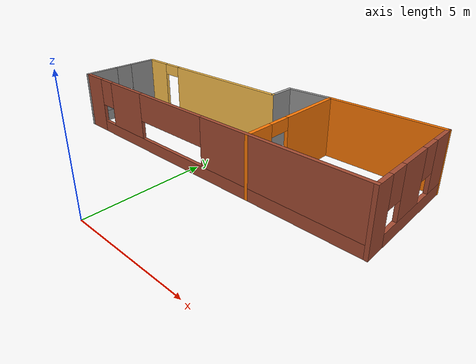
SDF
<?xml version='1.0'?>
<sdf version='1.6'>
  <model name='Building'>
    <pose frame=''>0.342104 7.03476 0 0 -0 0</pose>
    <link name='Wall_1'>
      <pose frame=''>-7.3 -0.627835 0 0 0 -1.5708</pose>
      <visual name='Wall_1_Visual_0'>
        <pose frame=''>-1.17126 0 1.25 0 -0 0</pose>
        <geometry>
          <box>
            <size>1.40748 0.15 2.5</size>
          </box>
        </geometry>
        <material>
          <script>
            <uri>file://media/materials/scripts/gazebo.material</uri>
            <name>Gazebo/Grey</name>
          </script>
          <ambient>1 1 1 1</ambient>
        </material>
        <meta>
          <layer>0</layer>
        </meta>
      </visual>
      <collision name='Wall_1_Collision_0'>
        <geometry>
          <box>
            <size>1.40748 0.15 2.5</size>
          </box>
        </geometry>
        <pose frame=''>-1.17126 0 1.25 0 -0 0</pose>
      </collision>
      <visual name='Wall_1_Visual_1'>
        <pose frame=''>0.703738 0 0.25 0 -0 0</pose>
        <geometry>
          <box>
            <size>2.34253 0.15 0.5</size>
          </box>
        </geometry>
        <material>
          <script>
            <uri>file://media/materials/scripts/gazebo.material</uri>
            <name>Gazebo/Grey</name>
          </script>
          <ambient>1 1 1 1</ambient>
        </material>
        <meta>
          <layer>0</layer>
        </meta>
      </visual>
      <collision name='Wall_1_Collision_1'>
        <geometry>
          <box>
            <size>2.34253 0.15 0.5</size>
          </box>
        </geometry>
        <pose frame=''>0.703738 0 0.25 0 -0 0</pose>
      </collision>
      <visual name='Wall_1_Visual_2'>
        <pose frame=''>1.10374 0 1.5 0 -0 0</pose>
        <geometry>
          <box>
            <size>1.54252 0.15 2</size>
          </box>
        </geometry>
        <material>
          <script>
            <uri>file://media/materials/scripts/gazebo.material</uri>
            <name>Gazebo/Grey</name>
          </script>
          <ambient>1 1 1 1</ambient>
        </material>
        <meta>
          <layer>0</layer>
        </meta>
      </visual>
      <collision name='Wall_1_Collision_2'>
        <geometry>
          <box>
            <size>1.54252 0.15 2</size>
          </box>
        </geometry>
        <pose frame=''>1.10374 0 1.5 0 -0 0</pose>
      </collision>
      <visual name='Wall_1_Visual_3'>
        <pose frame=''>-0.067525 0 1.9 0 -0 0</pose>
        <geometry>
          <box>
            <size>0.8 0.15 1.2</size>
          </box>
        </geometry>
        <material>
          <script>
            <uri>file://media/materials/scripts/gazebo.material</uri>
            <name>Gazebo/Grey</name>
          </script>
          <ambient>1 1 1 1</ambient>
        </material>
        <meta>
          <layer>0</layer>
        </meta>
      </visual>
      <collision name='Wall_1_Collision_3'>
        <geometry>
          <box>
            <size>0.8 0.15 1.2</size>
          </box>
        </geometry>
        <pose frame=''>-0.067525 0 1.9 0 -0 0</pose>
      </collision>
    </link>
    <link name='Wall_2'>
      <pose frame=''>0 -2.42783 0 0 -0 0</pose>
      <visual name='Wall_2_Visual_0'>
        <pose frame=''>-6.75061 0 1.25 0 -0 0</pose>
        <geometry>
          <box>
            <size>1.24877 0.15 2.5</size>
          </box>
        </geometry>
        <material>
          <script>
            <uri>file://media/materials/scripts/gazebo.material</uri>
            <name>Gazebo/Bricks</name>
          </script>
          <ambient>1 0.764706 0.305882 1</ambient>
        </material>
        <meta>
          <layer>0</layer>
        </meta>
      </visual>
      <collision name='Wall_2_Collision_0'>
        <geometry>
          <box>
            <size>1.24877 0.15 2.5</size>
          </box>
        </geometry>
        <pose frame=''>-6.75061 0 1.25 0 -0 0</pose>
      </collision>
      <visual name='Wall_2_Visual_1'>
        <pose frame=''>0.624388 0 0.25 0 -0 0</pose>
        <geometry>
          <box>
            <size>13.5012 0.15 0.5</size>
          </box>
        </geometry>
        <material>
          <script>
            <uri>file://media/materials/scripts/gazebo.material</uri>
            <name>Gazebo/Bricks</name>
          </script>
          <ambient>1 0.764706 0.305882 1</ambient>
        </material>
        <meta>
          <layer>0</layer>
        </meta>
      </visual>
      <collision name='Wall_2_Collision_1'>
        <geometry>
          <box>
            <size>13.5012 0.15 0.5</size>
          </box>
        </geometry>
        <pose frame=''>0.624388 0 0.25 0 -0 0</pose>
      </collision>
      <visual name='Wall_2_Visual_2'>
        <pose frame=''>-4.27147 0 1.5 0 -0 0</pose>
        <geometry>
          <box>
            <size>2.1095 0.15 2</size>
          </box>
        </geometry>
        <material>
          <script>
            <uri>file://media/materials/scripts/gazebo.material</uri>
            <name>Gazebo/Bricks</name>
          </script>
          <ambient>1 0.764706 0.305882 1</ambient>
        </material>
        <meta>
          <layer>0</layer>
        </meta>
      </visual>
      <collision name='Wall_2_Collision_2'>
        <geometry>
          <box>
            <size>2.1095 0.15 2</size>
          </box>
        </geometry>
        <pose frame=''>-4.27147 0 1.5 0 -0 0</pose>
      </collision>
      <visual name='Wall_2_Visual_3'>
        <pose frame=''>3.90744 0 1.5 0 -0 0</pose>
        <geometry>
          <box>
            <size>6.93513 0.15 2</size>
          </box>
        </geometry>
        <material>
          <script>
            <uri>file://media/materials/scripts/gazebo.material</uri>
            <name>Gazebo/Bricks</name>
          </script>
          <ambient>1 0.764706 0.305882 1</ambient>
        </material>
        <meta>
          <layer>0</layer>
        </meta>
      </visual>
      <collision name='Wall_2_Collision_3'>
        <geometry>
          <box>
            <size>6.93513 0.15 2</size>
          </box>
        </geometry>
        <pose frame=''>3.90744 0 1.5 0 -0 0</pose>
      </collision>
      <visual name='Wall_2_Visual_4'>
        <pose frame=''>-5.72623 0 1.9 0 -0 0</pose>
        <geometry>
          <box>
            <size>0.8 0.15 1.2</size>
          </box>
        </geometry>
        <material>
          <script>
            <uri>file://media/materials/scripts/gazebo.material</uri>
            <name>Gazebo/Bricks</name>
          </script>
          <ambient>1 0.764706 0.305882 1</ambient>
        </material>
        <meta>
          <layer>0</layer>
        </meta>
      </visual>
      <collision name='Wall_2_Collision_4'>
        <geometry>
          <box>
            <size>0.8 0.15 1.2</size>
          </box>
        </geometry>
        <pose frame=''>-5.72623 0 1.9 0 -0 0</pose>
      </collision>
      <visual name='Wall_2_Visual_5'>
        <pose frame=''>-1.38843 0 1.9 0 -0 0</pose>
        <geometry>
          <box>
            <size>3.6566 0.15 1.2</size>
          </box>
        </geometry>
        <material>
          <script>
            <uri>file://media/materials/scripts/gazebo.material</uri>
            <name>Gazebo/Bricks</name>
          </script>
          <ambient>1 0.764706 0.305882 1</ambient>
        </material>
        <meta>
          <layer>0</layer>
        </meta>
      </visual>
      <collision name='Wall_2_Collision_5'>
        <geometry>
          <box>
            <size>3.6566 0.15 1.2</size>
          </box>
        </geometry>
        <pose frame=''>-1.38843 0 1.9 0 -0 0</pose>
      </collision>
    </link>
    <link name='Wall_3'>
      <pose frame=''>7.3 -0.002835 0 0 -0 1.5708</pose>
      <visual name='Wall_3_Visual_0'>
        <pose frame=''>-2.08581 0 1.25 0 -0 0</pose>
        <geometry>
          <box>
            <size>0.828375 0.15 2.5</size>
          </box>
        </geometry>
        <material>
          <script>
            <uri>file://media/materials/scripts/gazebo.material</uri>
            <name>Gazebo/Bricks</name>
          </script>
          <ambient>1 1 1 1</ambient>
        </material>
        <meta>
          <layer>0</layer>
        </meta>
      </visual>
      <collision name='Wall_3_Collision_0'>
        <geometry>
          <box>
            <size>0.828375 0.15 2.5</size>
          </box>
        </geometry>
        <pose frame=''>-2.08581 0 1.25 0 -0 0</pose>
      </collision>
      <visual name='Wall_3_Visual_1'>
        <pose frame=''>0.414187 0 0.25 0 -0 0</pose>
        <geometry>
          <box>
            <size>4.17162 0.15 0.5</size>
          </box>
        </geometry>
        <material>
          <script>
            <uri>file://media/materials/scripts/gazebo.material</uri>
            <name>Gazebo/Bricks</name>
          </script>
          <ambient>1 1 1 1</ambient>
        </material>
        <meta>
          <layer>0</layer>
        </meta>
      </visual>
      <collision name='Wall_3_Collision_1'>
        <geometry>
          <box>
            <size>4.17162 0.15 0.5</size>
          </box>
        </geometry>
        <pose frame=''>0.414187 0 0.25 0 -0 0</pose>
      </collision>
      <visual name='Wall_3_Visual_2'>
        <pose frame=''>-0.154113 0 1.5 0 -0 0</pose>
        <geometry>
          <box>
            <size>1.43502 0.15 2</size>
          </box>
        </geometry>
        <material>
          <script>
            <uri>file://media/materials/scripts/gazebo.material</uri>
            <name>Gazebo/Bricks</name>
          </script>
          <ambient>1 1 1 1</ambient>
        </material>
        <meta>
          <layer>0</layer>
        </meta>
      </visual>
      <collision name='Wall_3_Collision_2'>
        <geometry>
          <box>
            <size>1.43502 0.15 2</size>
          </box>
        </geometry>
        <pose frame=''>-0.154113 0 1.5 0 -0 0</pose>
      </collision>
      <visual name='Wall_3_Visual_3'>
        <pose frame=''>1.9317 0 1.5 0 -0 0</pose>
        <geometry>
          <box>
            <size>1.1366 0.15 2</size>
          </box>
        </geometry>
        <material>
          <script>
            <uri>file://media/materials/scripts/gazebo.material</uri>
            <name>Gazebo/Bricks</name>
          </script>
          <ambient>1 1 1 1</ambient>
        </material>
        <meta>
          <layer>0</layer>
        </meta>
      </visual>
      <collision name='Wall_3_Collision_3'>
        <geometry>
          <box>
            <size>1.1366 0.15 2</size>
          </box>
        </geometry>
        <pose frame=''>1.9317 0 1.5 0 -0 0</pose>
      </collision>
      <visual name='Wall_3_Visual_4'>
        <pose frame=''>-1.27163 0 1.9 0 -0 0</pose>
        <geometry>
          <box>
            <size>0.8 0.15 1.2</size>
          </box>
        </geometry>
        <material>
          <script>
            <uri>file://media/materials/scripts/gazebo.material</uri>
            <name>Gazebo/Bricks</name>
          </script>
          <ambient>1 1 1 1</ambient>
        </material>
        <meta>
          <layer>0</layer>
        </meta>
      </visual>
      <collision name='Wall_3_Collision_4'>
        <geometry>
          <box>
            <size>0.8 0.15 1.2</size>
          </box>
        </geometry>
        <pose frame=''>-1.27163 0 1.9 0 -0 0</pose>
      </collision>
      <visual name='Wall_3_Visual_5'>
        <pose frame=''>0.9634 0 1.9 0 -0 0</pose>
        <geometry>
          <box>
            <size>0.8 0.15 1.2</size>
          </box>
        </geometry>
        <material>
          <script>
            <uri>file://media/materials/scripts/gazebo.material</uri>
            <name>Gazebo/Bricks</name>
          </script>
          <ambient>1 1 1 1</ambient>
        </material>
        <meta>
          <layer>0</layer>
        </meta>
      </visual>
      <collision name='Wall_3_Collision_5'>
        <geometry>
          <box>
            <size>0.8 0.15 1.2</size>
          </box>
        </geometry>
        <pose frame=''>0.9634 0 1.9 0 -0 0</pose>
      </collision>
    </link>
    <link name='Wall_4'>
      <collision name='Wall_4_Collision'>
        <geometry>
          <box>
            <size>4.75 0.15 2.5</size>
          </box>
        </geometry>
        <pose frame=''>0 0 1.25 0 -0 0</pose>
      </collision>
      <visual name='Wall_4_Visual'>
        <pose frame=''>0 0 1.25 0 -0 0</pose>
        <geometry>
          <box>
            <size>4.75 0.15 2.5</size>
          </box>
        </geometry>
        <material>
          <script>
            <uri>file://media/materials/scripts/gazebo.material</uri>
            <name>Gazebo/Grey</name>
          </script>
          <ambient>0.996078 0.47451 0.0196078 1</ambient>
        </material>
        <meta>
          <layer>0</layer>
        </meta>
      </visual>
      <pose frame=''>5 2.42217 0 0 -0 3.14159</pose>
    </link>
    <link name='Wall_5'>
      <pose frame=''>2.7 -0.002835 0 0 0 -1.5708</pose>
      <visual name='Wall_5_Visual_0'>
        <pose frame=''>-1.06401 0 1.25 0 -0 0</pose>
        <geometry>
          <box>
            <size>2.87197 0.15 2.5</size>
          </box>
        </geometry>
        <material>
          <script>
            <uri>file://media/materials/scripts/gazebo.material</uri>
            <name>Gazebo/Grey</name>
          </script>
          <ambient>0.996078 0.47451 0.0196078 1</ambient>
        </material>
        <meta>
          <layer>0</layer>
        </meta>
      </visual>
      <collision name='Wall_5_Collision_0'>
        <geometry>
          <box>
            <size>2.87197 0.15 2.5</size>
          </box>
        </geometry>
        <pose frame=''>-1.06401 0 1.25 0 -0 0</pose>
      </collision>
      <visual name='Wall_5_Visual_1'>
        <pose frame=''>1.88599 0 1.25 0 -0 0</pose>
        <geometry>
          <box>
            <size>1.22802 0.15 2.5</size>
          </box>
        </geometry>
        <material>
          <script>
            <uri>file://media/materials/scripts/gazebo.material</uri>
            <name>Gazebo/Grey</name>
          </script>
          <ambient>0.996078 0.47451 0.0196078 1</ambient>
        </material>
        <meta>
          <layer>0</layer>
        </meta>
      </visual>
      <collision name='Wall_5_Collision_1'>
        <geometry>
          <box>
            <size>1.22802 0.15 2.5</size>
          </box>
        </geometry>
        <pose frame=''>1.88599 0 1.25 0 -0 0</pose>
      </collision>
      <visual name='Wall_5_Visual_2'>
        <pose frame=''>0.821975 0 2.25 0 -0 0</pose>
        <geometry>
          <box>
            <size>0.9 0.15 0.5</size>
          </box>
        </geometry>
        <material>
          <script>
            <uri>file://media/materials/scripts/gazebo.material</uri>
            <name>Gazebo/Grey</name>
          </script>
          <ambient>0.996078 0.47451 0.0196078 1</ambient>
        </material>
        <meta>
          <layer>0</layer>
        </meta>
      </visual>
      <collision name='Wall_5_Collision_2'>
        <geometry>
          <box>
            <size>0.9 0.15 0.5</size>
          </box>
        </geometry>
        <pose frame=''>0.821975 0 2.25 0 -0 0</pose>
      </collision>
    </link>
    <link name='Wall_7'>
      <pose frame=''>-3.25 1.17216 0 0 -0 0</pose>
      <visual name='Wall_7_Visual_0'>
        <pose frame=''>-3.4661 0 1.25 0 -0 0</pose>
        <geometry>
          <box>
            <size>1.3178 0.15 2.5</size>
          </box>
        </geometry>
        <material>
          <script>
            <uri>file://media/materials/scripts/gazebo.material</uri>
            <name>Gazebo/Grey</name>
          </script>
          <ambient>1 0.764706 0.305882 1</ambient>
        </material>
        <meta>
          <layer>0</layer>
        </meta>
      </visual>
      <collision name='Wall_7_Collision_0'>
        <geometry>
          <box>
            <size>1.3178 0.15 2.5</size>
          </box>
        </geometry>
        <pose frame=''>-3.4661 0 1.25 0 -0 0</pose>
      </collision>
      <visual name='Wall_7_Visual_1'>
        <pose frame=''>1.1089 0 1.25 0 -0 0</pose>
        <geometry>
          <box>
            <size>6.0322 0.15 2.5</size>
          </box>
        </geometry>
        <material>
          <script>
            <uri>file://media/materials/scripts/gazebo.material</uri>
            <name>Gazebo/Grey</name>
          </script>
          <ambient>1 0.764706 0.305882 1</ambient>
        </material>
        <meta>
          <layer>0</layer>
        </meta>
      </visual>
      <collision name='Wall_7_Collision_1'>
        <geometry>
          <box>
            <size>6.0322 0.15 2.5</size>
          </box>
        </geometry>
        <pose frame=''>1.1089 0 1.25 0 -0 0</pose>
      </collision>
      <visual name='Wall_7_Visual_2'>
        <pose frame=''>-2.3572 0 2.25 0 -0 0</pose>
        <geometry>
          <box>
            <size>0.9 0.15 0.5</size>
          </box>
        </geometry>
        <material>
          <script>
            <uri>file://media/materials/scripts/gazebo.material</uri>
            <name>Gazebo/Grey</name>
          </script>
          <ambient>1 0.764706 0.305882 1</ambient>
        </material>
        <meta>
          <layer>0</layer>
        </meta>
      </visual>
      <collision name='Wall_7_Collision_2'>
        <geometry>
          <box>
            <size>0.9 0.15 0.5</size>
          </box>
        </geometry>
        <pose frame=''>-2.3572 0 2.25 0 -0 0</pose>
      </collision>
    </link>
    <link name='Wall_8'>
      <collision name='Wall_8_Collision'>
        <geometry>
          <box>
            <size>1.25 0.15 2.5</size>
          </box>
        </geometry>
        <pose frame=''>0 0 1.25 0 -0 0</pose>
      </collision>
      <visual name='Wall_8_Visual'>
        <pose frame=''>0 0 1.25 0 -0 0</pose>
        <geometry>
          <box>
            <size>1.25 0.15 2.5</size>
          </box>
        </geometry>
        <material>
          <script>
            <uri>file://media/materials/scripts/gazebo.material</uri>
            <name>Gazebo/Grey</name>
          </script>
          <ambient>1 1 1 1</ambient>
        </material>
        <meta>
          <layer>0</layer>
        </meta>
      </visual>
      <pose frame=''>0.8 1.72216 0 0 -0 1.5708</pose>
    </link>
    <link name='Wall_9'>
      <collision name='Wall_9_Collision'>
        <geometry>
          <box>
            <size>2.05591 0.15 2.5</size>
          </box>
        </geometry>
        <pose frame=''>0 0 1.25 0 -0 0</pose>
      </collision>
      <visual name='Wall_9_Visual'>
        <pose frame=''>0 0 1.25 0 -0 0</pose>
        <geometry>
          <box>
            <size>2.05591 0.15 2.5</size>
          </box>
        </geometry>
        <material>
          <script>
            <uri>file://media/materials/scripts/gazebo.material</uri>
            <name>Gazebo/Grey</name>
          </script>
          <ambient>1 1 1 1</ambient>
        </material>
        <meta>
          <layer>0</layer>
        </meta>
      </visual>
      <pose frame=''>1.75 2.34716 0 0 -0 0.078784</pose>
    </link>
    <static>1</static>
  </model>
</sdf>
